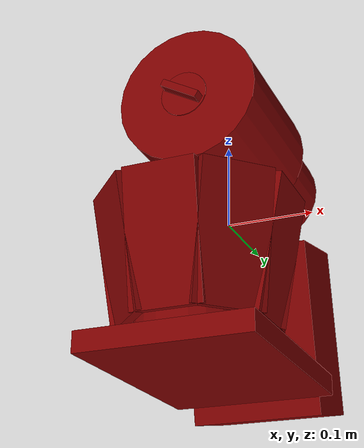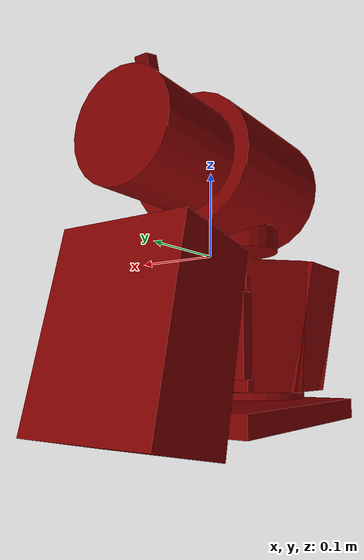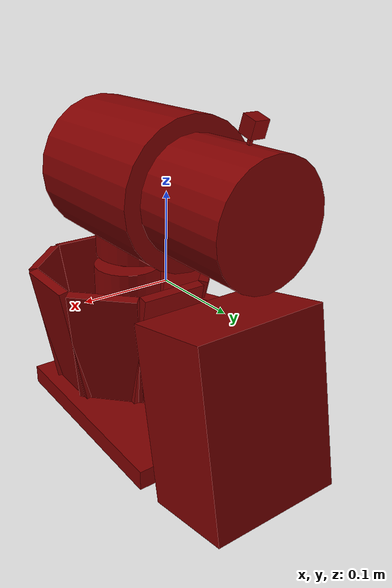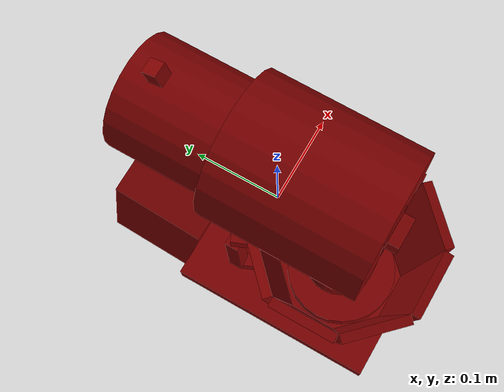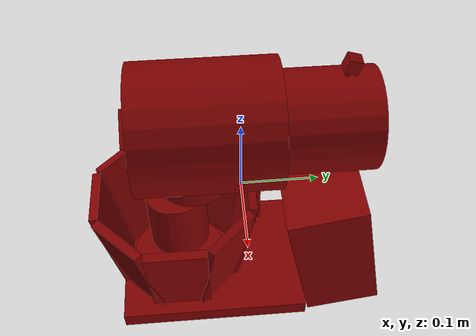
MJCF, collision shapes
<?xml version='1.0' encoding='UTF-8'?>
<mujoco model="model">
  <compiler angle="radian"/>
  <asset>
    <mesh file="visuals/Blender001.obj" name="Blender001_vis"/>
    <mesh file="visuals/Body001.obj" name="Body001_vis"/>
    <mesh file="visuals/Container001.obj" name="Container001_vis"/>
    <mesh file="visuals/Knob001.obj" name="Knob001_vis"/>
    <mesh file="visuals/Lever001.obj" name="Lever001_vis"/>
    <mesh file="visuals/Lid001.obj" name="Lid001_vis"/>
    <texture file="visuals/T_BC001.png" name="Body001_material" type="2d"/>
    <material name="Body001_material" rgba="1 1 1 1.0" texture="Body001_material" shininess="0.141421377658844" specular="0.3103448502657381"/>
    <texture file="visuals/T_BC001.png" name="Container001_material" type="2d"/>
    <material name="Container001_material" rgba="1 1 1 1.0" texture="Container001_material" shininess="0.141421377658844" specular="0.3103448502657381"/>
    <texture file="visuals/T_BC001.png" name="Lid001_material" type="2d"/>
    <material name="Lid001_material" rgba="1 1 1 1.0" texture="Lid001_material" shininess="0.141421377658844" specular="0.3103448502657381"/>
    <texture file="visuals/T_BC001.png" name="Blender001_material" type="2d"/>
    <material name="Blender001_material" rgba="1 1 1 1.0" texture="Blender001_material" shininess="0.141421377658844" specular="0.3103448502657381"/>
    <texture file="visuals/T_BC001.png" name="Knob001_material" type="2d"/>
    <material name="Knob001_material" rgba="1 1 1 1.0" texture="Knob001_material" shininess="0.141421377658844" specular="0.3103448502657381"/>
    <texture file="visuals/T_BC001.png" name="Lever001_material" type="2d"/>
    <material name="Lever001_material" rgba="1 1 1 1.0" texture="Lever001_material" shininess="0.141421377658844" specular="0.3103448502657381"/>
  </asset>
  <default>
    <default class="visual">
      <geom conaffinity="0" contype="0" group="1" type="mesh"/>
    </default>
    <default class="collision">
      <geom group="0" rgba="0.5 0 0 0.5"/>
    </default>
    <default class="spawn">
      <geom group="0" rgba="1 1 1 0.5" contype="0" conaffinity="0"/>
      <site group="0" rgba="1 1 1 0.5"/>
    </default>
    <default class="region">
      <geom group="1" conaffinity="0" contype="0" rgba="0 1 0 0"/>
    </default>
  </default>
  <worldbody>
    <body>
      <body name="object">
        <geom mesh="Body001_vis" type="mesh" solimp="0.998 0.998 0.001" solref="0.001 1" density="100" friction="0.95 0.3 0.1" class="visual" material="Body001_material"/>
        <geom class="collision" type="box" pos="-0.003068 0.122456 -0.097866" size="0.07723557204008102 0.05158618092536926 0.10108660906553268" quat="0.9946571588516235 0.10323340445756912 2.2922420507846902e-17 -8.876775665135218e-25"/>
        <geom class="collision" type="box" pos="-0.003766 -0.042854 -0.176552" size="0.09452518075704575 0.12720628082752228 0.011588399298489094" quat="1.0 0.0 0.0 0.0"/>
        <body name="Container001">
          <joint axis="0.0 0.0 1.0" pos="0.000000 -0.080226 -0.087866" limited="true" name="Container001_joint" range="0.0 0.03" type="slide" damping="1" frictionloss="1" armature=".01" stiffness="0.05"/>
          <geom mesh="Container001_vis" type="mesh" solimp="0.998 0.998 0.001" solref="0.001 1" density="100" friction="0.95 0.3 0.1" class="visual" material="Container001_material"/>
          <geom class="collision" type="box" pos="0.000000 -0.000126 -0.080101" size="0.039093680679798126 0.005616444628685713 0.07312160730361938" quat="0.9958149790763855 -0.09139243513345718 -0.0 0.0"/>
          <geom class="collision" type="cylinder" pos="0.000000 -0.089012 -0.153702" size="0.0656556487083435 0.008675988763570786" quat="1.0 0.0 0.0 0.0"/>
          <geom class="collision" type="box" pos="0.000000 -0.175066 -0.080101" size="0.039093680679798126 0.005616444628685713 0.07312160730361938" quat="0.9958149790763855 0.09139243513345718 0.0 0.0"/>
          <geom class="collision" type="box" pos="-0.087470 -0.087596 -0.080101" size="0.039093680679798126 0.005616444628685713 0.07312160730361938" quat="0.7041475176811218 0.06462422013282776 -0.06462422013282776 -0.704147458076477"/>
          <geom class="collision" type="box" pos="0.087470 -0.087596 -0.080101" size="0.039093680679798126 0.005616444628685713 0.07312160730361938" quat="0.7041475176811218 -0.06462422013282776 0.06462422013282776 -0.704147458076477"/>
          <geom class="collision" type="box" pos="0.061851 -0.149447 -0.080101" size="0.03909367695450783 0.005616445094347 0.07312160730361938" quat="0.3810819983482361 -0.034974388778209686 0.08443561941385269 -0.9200130105018616"/>
          <geom class="collision" type="box" pos="-0.061851 -0.025746 -0.080101" size="0.03909367695450783 0.005616445094347 0.07312160730361938" quat="0.3810819983482361 0.034974388778209686 -0.08443561941385269 -0.9200130105018616"/>
          <geom class="collision" type="box" pos="0.061851 -0.025746 -0.080101" size="0.039093680679798126 0.005616445094347 0.07312160730361938" quat="0.38108187913894653 0.03497438132762909 0.08443562686443329 0.9200130701065063"/>
          <geom class="collision" type="box" pos="-0.061851 -0.149447 -0.080101" size="0.039093680679798126 0.005616445094347 0.07312160730361938" quat="0.38108187913894653 -0.03497438132762909 -0.08443562686443329 0.9200130701065063"/>
          <geom class="collision" type="box" pos="-0.054753 0.023966 -0.092412" size="0.008204735815525055 0.008288691751658916 0.04507894068956375" quat="1.0 0.0 0.0 0.0"/>
          <geom class="collision" type="box" pos="-0.045407 0.004400 -0.141472" size="0.008055038750171661 0.020156532526016235 0.00855184905230999" quat="0.9816450476646423 0.0 0.0 0.19071708619594574"/>
          <geom class="collision" type="box" pos="-0.050188 0.016240 -0.036829" size="0.008055038750171661 0.012303204275667667 0.00855184905230999" quat="0.9816450476646423 0.0 0.0 0.19071708619594574"/>
        </body>
        <body name="Lid001">
          <joint axis="-1.0 0.0 0.0" pos="-0.002708 0.148402 0.021216" limited="true" name="Lid001_joint" range="0.0 1.5707963267948966" type="hinge" damping="1" frictionloss="1" armature=".01" stiffness="0.05"/>
          <geom mesh="Lid001_vis" type="mesh" solimp="0.998 0.998 0.001" solref="0.001 1" density="100" friction="0.95 0.3 0.1" class="visual" material="Lid001_material"/>
          <geom class="collision" type="cylinder" pos="0.000000 -0.040664 0.104478" size="0.07904794067144394 0.08587756007909775" quat="0.7071067094802856 -0.7071068286895752 -1.5700929612083792e-16 -2.2148510003422914e-23"/>
          <geom class="collision" type="cylinder" pos="-0.002127 -0.061110 0.038769" size="0.047373201698064804 0.02475908026099205" quat="1.9470718370939721e-07 1.0 2.220446313948109e-16 2.5145887987006017e-23"/>
          <geom class="collision" type="cylinder" pos="-0.000000 0.101041 0.104478" size="0.0620625764131546 0.055062852799892426" quat="0.7071067094802856 -0.7071068286895752 -1.5700929612083792e-16 -2.2148510003422914e-23"/>
          <body name="Blender001">
            <joint axis="0.0 0.0 1.0" pos="-0.003177 -0.085018 -0.050520" limited="false" name="Blender001_joint" range="0 360" type="hinge" damping="1" frictionloss="1" armature=".01" stiffness="0.05"/>
            <geom mesh="Blender001_vis" type="mesh" solimp="0.998 0.998 0.001" solref="0.001 1" density="100" friction="0.95 0.3 0.1" class="visual" material="Blender001_material"/>
            <geom class="collision" type="cylinder" pos="-0.003573 -0.085427 -0.006297" size="0.011719915084540844 0.017287081107497215" quat="1.0 0.0 0.0 0.0"/>
            <geom class="collision" type="cylinder" pos="-0.003573 -0.085427 -0.055539" size="0.04034358263015747 0.04634269326925278" quat="1.0 0.0 0.0 0.0"/>
          </body>
          <body name="Knob001">
            <joint axis="0.0 1.0 0.0" pos="-0.002567 -0.133817 0.104565" limited="true" name="Knob001_joint" range="0.0 5.061454830783556" type="hinge" damping="0.05" armature="0.001"/>
            <geom mesh="Knob001_vis" type="mesh" solimp="0.998 0.998 0.001" solref="0.001 1" density="100" friction="0.95 0.3 0.1" class="visual" material="Knob001_material"/>
            <geom class="collision" type="cylinder" pos="-0.002635 -0.126920 0.104753" size="0.026354772970080376 0.0006593046709895134" quat="0.7071068286895752 0.7071067690849304 0.0 0.0"/>
            <geom class="collision" type="box" pos="-0.002533 -0.133635 0.104992" size="0.004062280990183353 0.006516560912132263 0.023622656241059303" quat="0.8660253882408142 0.0 -0.5 0.0"/>
          </body>
          <body name="Lever001">
            <joint axis="0.0 -0.9707942008972168 0.23991331458091736" pos="-0.002567 0.115876 0.160356" limited="true" name="Lever001_joint" range="0.0 0.05" type="slide" damping="10" frictionloss="10" armature=".01" stiffness="-0.5"/>
            <geom mesh="Lever001_vis" type="mesh" solimp="0.998 0.998 0.001" solref="0.001 1" density="0" friction="0.95 0.3 0.1" class="visual" material="Lever001_material"/>
            <geom class="collision" type="box" pos="-0.002581 0.119031 0.172578" size="0.0016758701531216502 0.001796417636796832 0.005769609473645687" quat="0.989137589931488 -0.14699280261993408 -3.263891907989697e-17 -1.3394085086965664e-23"/>
            <geom class="collision" type="box" pos="-0.002894 0.121545 0.182998" size="0.008071699179708958 0.008177361451089382 0.00853781308978796" quat="0.989137589931488 -0.14699280261993408 -3.263891907989697e-17 -1.3394085086965664e-23"/>
          </body>
        </body>
        <geom class="region" name="reg_main" type="box" pos="-0.002475000000000005 0.011101 0.0012589999999999962" size="0.095275 0.180805 0.192706"/>
      </body>
    </body>
  </worldbody>
  <actuator>
    <motor name="Container001_joint_actuator" joint="Container001_joint" gear="50"/>
    <motor name="Lid001_joint_actuator" joint="Lid001_joint" gear="20"/>
    <motor name="Blender001_joint_actuator" joint="Blender001_joint" gear="20"/>
    <motor name="Knob001_joint_actuator" joint="Knob001_joint" gear="10"/>
    <motor name="Lever001_joint_actuator" joint="Lever001_joint" gear="1"/>
  </actuator>
</mujoco>
